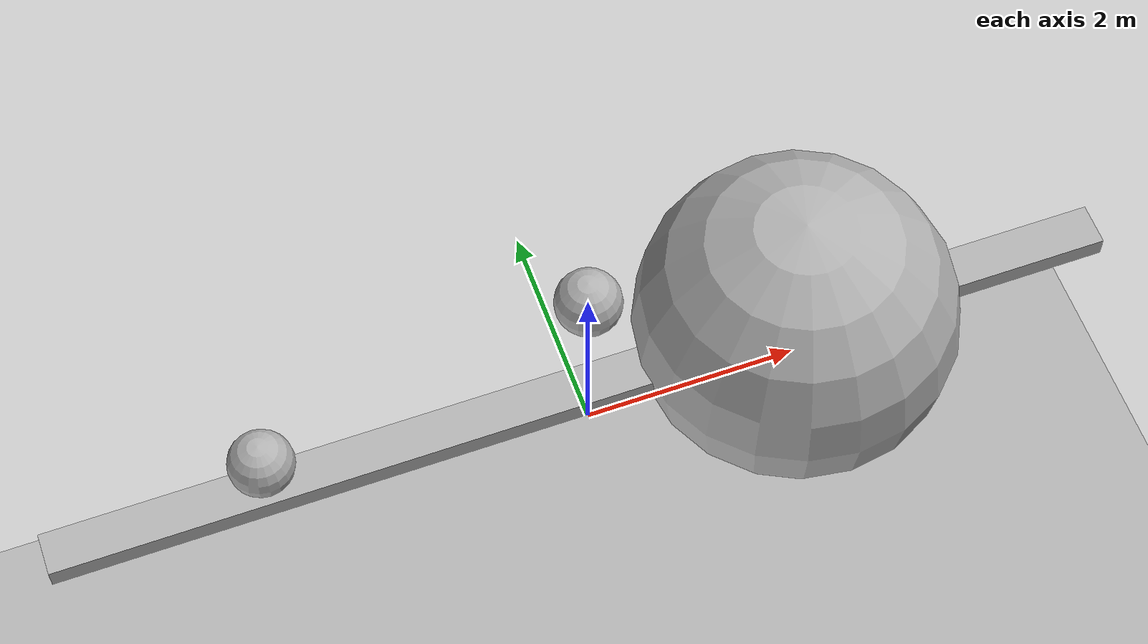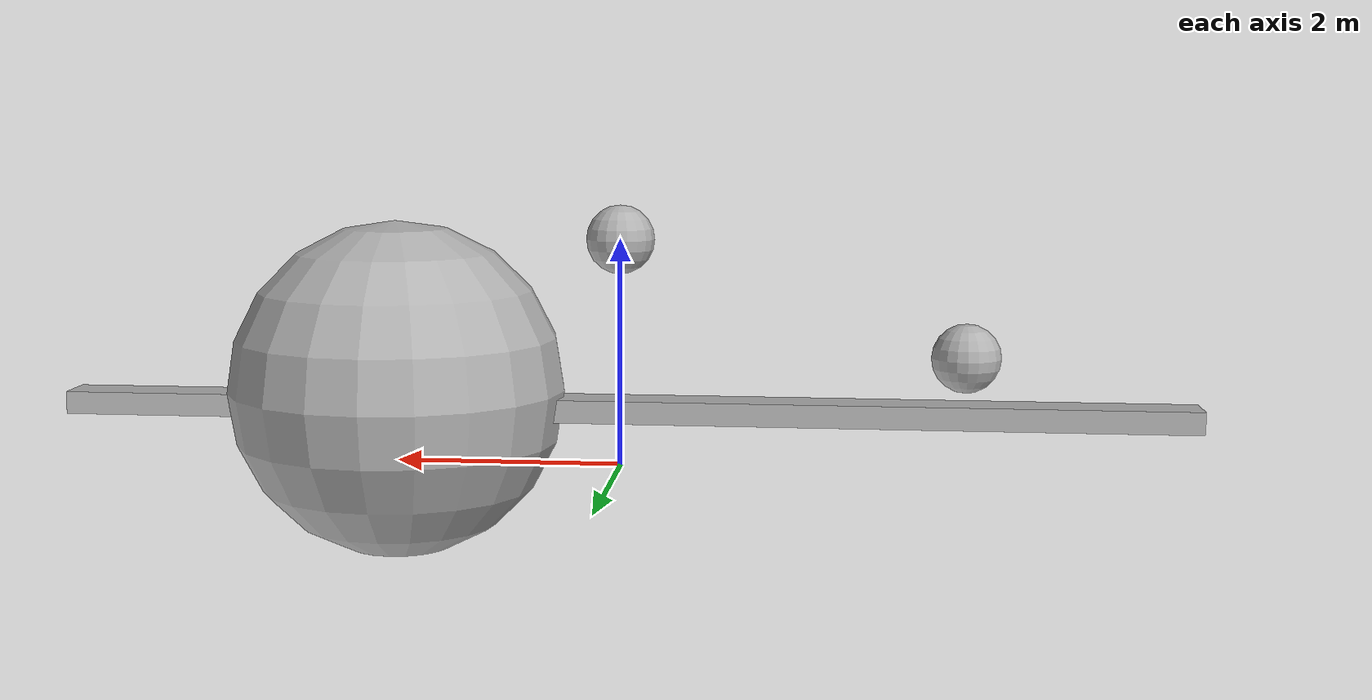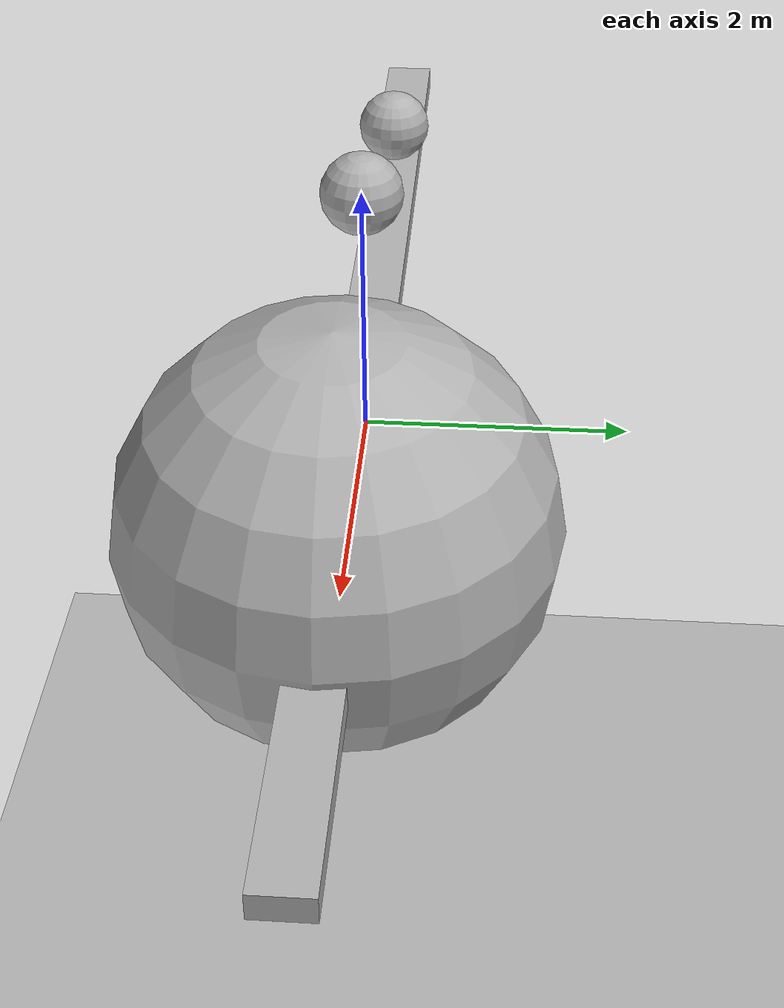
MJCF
<mujoco>
  <option gravity="0 0 -9.81" />
  <worldbody>
    <body name="object_5" pos="0 0 -10">
      <geom type="plane" size="30 30 0.1" rgba="0.7 0.7 0.7 1" />
    </body>
    <body name="object_4" pos="0 0 0.5">
      <geom type="box" size="5 0.2 0.1" density="0.5" rgba="0.7 0.7 0.7 1" />
      <joint name="object_4_joint" type="hinge" axis="0 1 0" />
    </body>
    <body name="object_1" pos="-3 0 1">
      <geom type="sphere" size="0.3" density="2" rgba="0.7 0.7 0.7 1" />
    </body>
    <body name="object_2" pos="3 0 1">
      <geom type="sphere" size="0.3" density="1" rgba="0.7 0.7 0.7 1" />
    </body>
    <body name="object_3" pos="0 0 2">
      <geom type="sphere" size="0.3" density="1.5" rgba="0.7 0.7 0.7 1" />
    </body>
  <body name="balancing_mass" pos="2.0 0.0 0.65"><geom type="sphere" size="1.5" rgba="0.7 0.7 0.7 1" /></body></worldbody>
</mujoco>
